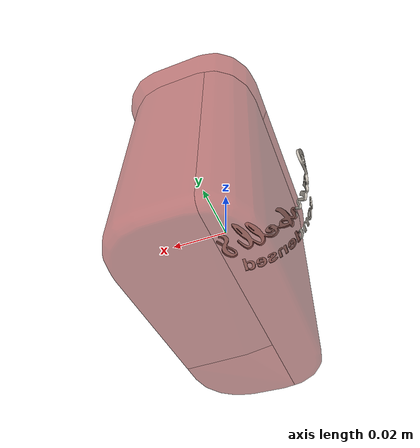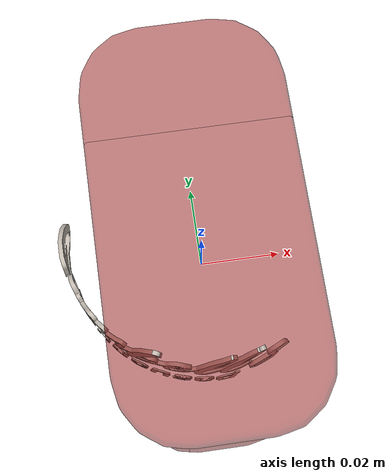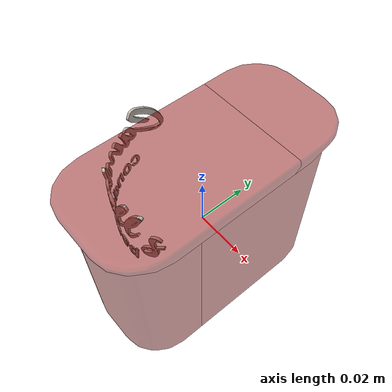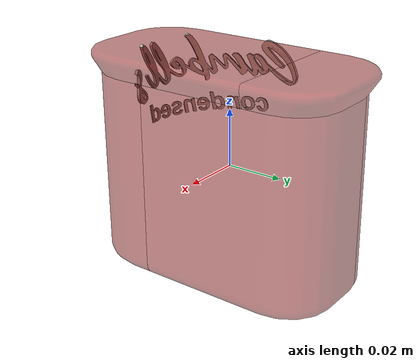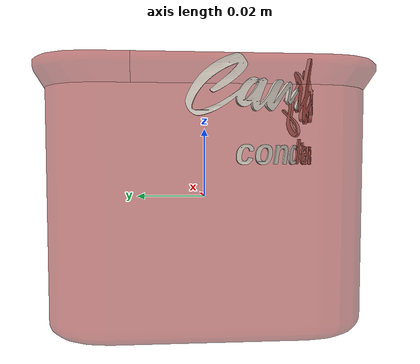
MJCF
<?xml version='1.0' encoding='utf-8'?>
<mujoco model="more_canned_food_18">
  <asset>
    <mesh file="visual/model_normalized_0.obj" name="model_normalized_0_vis" scale="0.09449999999999995 0.09449999999999995 0.09449999999999995" refquat="0.7071067811865475 0.0 0.0 0.7071067811865476" />
    <texture type="2d" name="image0" file="visual/image0.png" />
    <material name="material.004" texture="image0" specular="0.5" shininess="0.25" />
    <mesh file="collision/collision_mesh_collision_0.obj" name="canned_collision_mesh_0" scale="0.09449999999999995 0.09449999999999995 0.09449999999999995" refquat="0.7071067811865475 0.0 0.0 0.7071067811865476" />
    <mesh file="collision/collision_mesh_collision_1.obj" name="canned_collision_mesh_1" scale="0.09449999999999995 0.09449999999999995 0.09449999999999995" refquat="0.7071067811865475 0.0 0.0 0.7071067811865476" />
    <mesh file="collision/collision_mesh_collision_2.obj" name="canned_collision_mesh_2" scale="0.09449999999999995 0.09449999999999995 0.09449999999999995" refquat="0.7071067811865475 0.0 0.0 0.7071067811865476" />
    <mesh file="collision/collision_mesh_collision_3.obj" name="canned_collision_mesh_3" scale="0.09449999999999995 0.09449999999999995 0.09449999999999995" refquat="0.7071067811865475 0.0 0.0 0.7071067811865476" />
    <mesh file="collision/collision_mesh_collision_4.obj" name="canned_collision_mesh_4" scale="0.09449999999999995 0.09449999999999995 0.09449999999999995" refquat="0.7071067811865475 0.0 0.0 0.7071067811865476" />
  </asset>
  <default>
    <default class="region">
      <geom group="1" conaffinity="0" contype="0" rgba="0 1 0 0" mass="0" />
    </default>
    <default class="collision">
      <geom group="0" rgba="0.5 0 0 0.5" density="996.614876653" />
    </default>
  </default>
  <worldbody>
    <body>
      <body name="object">
        <geom solimp="0.998 0.998 0.001" solref="0.001 1" density="99.661487665" friction="0.95 0.3 0.1" type="mesh" mesh="model_normalized_0_vis" conaffinity="0" contype="0" group="1" material="material.004" />
        <geom class="region" name="reg_bbox" type="box" pos="0.0 0.0 4.5712957500001194e-05" size="0.02346141671999999 0.04772933801999998 0.03795022712249998" />
        <geom mesh="canned_collision_mesh_0" type="mesh" class="collision" />
        <geom mesh="canned_collision_mesh_1" type="mesh" class="collision" />
        <geom mesh="canned_collision_mesh_2" type="mesh" class="collision" />
        <geom mesh="canned_collision_mesh_3" type="mesh" class="collision" />
        <geom mesh="canned_collision_mesh_4" type="mesh" class="collision" />
      </body>
    </body>
  </worldbody>
</mujoco>
